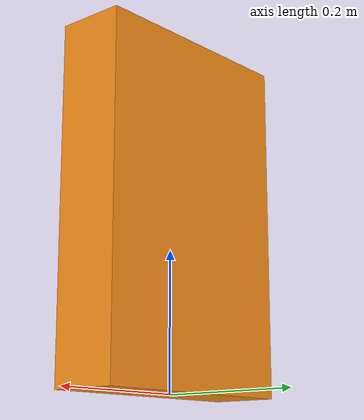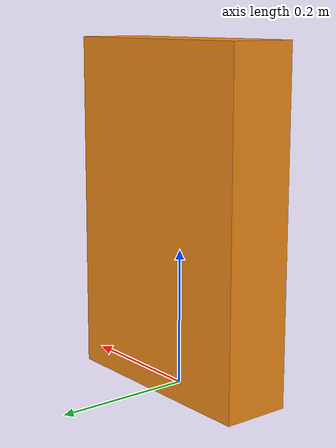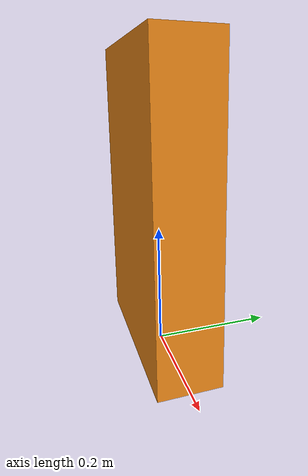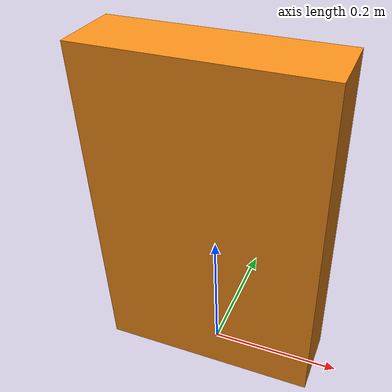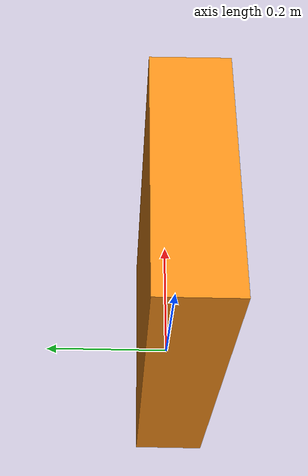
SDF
<?xml version='1.0'?>
<sdf version='1.6'>
  <model name='caution_33cm_wall'>
    <static>1</static>
    <pose frame=''>0 0 0 0 0 0</pose>
    <static>1</static>
    <link name='Wall'>
      <collision name='Wall_Collision'>
        <geometry>
          <box>
            <size>0.33 0.1 0.5</size>
          </box>
        </geometry>
        <pose frame=''>0 0 0.25 0 -0 0</pose>
      </collision>
      <visual name='Wall_Visual'>
        <pose frame=''>0 0 0.25 0 -0 0</pose>
        <geometry>
          <box>
            <size>0.33 0.1 0.5</size>
          </box>
        </geometry>
        <material>
          <script>
            <uri>file://media/materials/scripts/caution.material</uri>
            <name>Caution/Orange4</name>
          </script>
           <ambient>1 1 1 1</ambient>
        </material>
      </visual>
      <pose frame=''>0 0 0 0 -0 0</pose>
    </link>
  </model>
</sdf>
